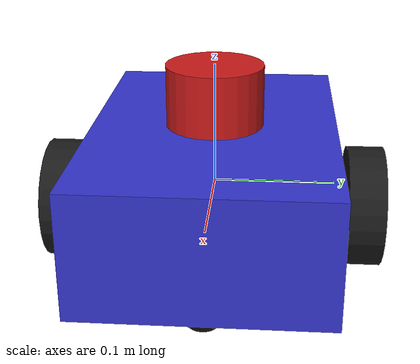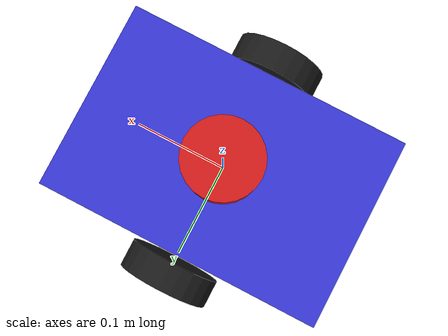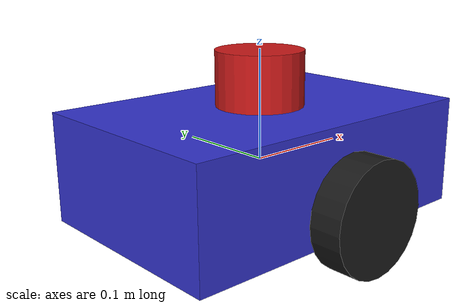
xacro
<?xml version="1.0"?>
<robot name="my_robot" xmlns:xacro="http://www.ros.org/wiki/xacro">

  <xacro:property name="chassis_length" value="0.3"/>
  <xacro:property name="chassis_width" value="0.2"/>
  <xacro:property name="chassis_height" value="0.1"/>
  <xacro:property name="chassis_mass" value="2.0"/>
  <xacro:property name="wheel_radius" value="0.05"/>
  <xacro:property name="wheel_width" value="0.03"/>
  <xacro:property name="wheel_mass" value="0.2"/>
  <xacro:property name="wheel_separation" value="0.25"/>
  <xacro:property name="wheel_offset_x" value="0.0"/>
  <xacro:property name="wheel_offset_z" value="-0.02"/>
  <xacro:property name="lidar_radius" value="0.04"/>
  <xacro:property name="lidar_height" value="0.05"/>

  <link name="base_link">
    <visual>
      <origin xyz="0 0 0" rpy="0 0 0"/>
      <geometry><box size="${chassis_length} ${chassis_width} ${chassis_height}"/></geometry>
      <material name="blue"><color rgba="0.2 0.2 0.8 1.0"/></material>
    </visual>
    <collision>
      <origin xyz="0 0 0" rpy="0 0 0"/>
      <geometry><box size="${chassis_length} ${chassis_width} ${chassis_height}"/></geometry>
    </collision>
    <inertial>
      <mass value="${chassis_mass}"/>
      <origin xyz="0 0 0" rpy="0 0 0"/>
      <inertia
        ixx="${(1/12) * chassis_mass * (chassis_width*chassis_width + chassis_height*chassis_height)}"
        iyy="${(1/12) * chassis_mass * (chassis_length*chassis_length + chassis_height*chassis_height)}"
        izz="${(1/12) * chassis_mass * (chassis_length*chassis_length + chassis_width*chassis_width)}"
        ixy="0" ixz="0" iyz="0"/>
    </inertial>
  </link>

  <xacro:macro name="wheel" params="prefix reflect">
    <link name="${prefix}_wheel_link">
      <visual>
        <origin xyz="0 0 0" rpy="1.5708 0 0"/>
        <geometry><cylinder radius="${wheel_radius}" length="${wheel_width}"/></geometry>
        <material name="black"><color rgba="0.1 0.1 0.1 1.0"/></material>
      </visual>
      <collision>
        <origin xyz="0 0 0" rpy="1.5708 0 0"/>
        <geometry><cylinder radius="${wheel_radius}" length="${wheel_width}"/></geometry>
      </collision>
      <inertial>
        <mass value="${wheel_mass}"/>
        <origin xyz="0 0 0" rpy="0 0 0"/>
        <inertia
          ixx="${(1/12) * wheel_mass * (3*wheel_radius*wheel_radius + wheel_width*wheel_width)}"
          iyy="${(1/12) * wheel_mass * (3*wheel_radius*wheel_radius + wheel_width*wheel_width)}"
          izz="${0.5 * wheel_mass * wheel_radius*wheel_radius}"
          ixy="0" ixz="0" iyz="0"/>
      </inertial>
    </link>
    <joint name="${prefix}_wheel_joint" type="continuous">
      <parent link="base_link"/>
      <child link="${prefix}_wheel_link"/>
      <origin xyz="${wheel_offset_x} ${reflect * wheel_separation/2} ${wheel_offset_z}" rpy="0 0 0"/>
      <axis xyz="0 1 0"/>
      <dynamics damping="0.2" friction="0.1"/>
    </joint>
  </xacro:macro>

  <xacro:wheel prefix="left" reflect="1"/>
  <xacro:wheel prefix="right" reflect="-1"/>

  <link name="caster_wheel_link">
    <visual><geometry><sphere radius="0.02"/></geometry><material name="black"/></visual>
    <collision><geometry><sphere radius="0.02"/></geometry></collision>
    <inertial>
      <mass value="0.05"/>
      <inertia ixx="0.00001" iyy="0.00001" izz="0.00001" ixy="0" ixz="0" iyz="0"/>
    </inertial>
  </link>
  <joint name="caster_wheel_joint" type="fixed">
    <parent link="base_link"/>
    <child link="caster_wheel_link"/>
    <origin xyz="${chassis_length/2 - 0.03} 0 ${wheel_offset_z - wheel_radius + 0.02}" rpy="0 0 0"/>
  </joint>

  <link name="lidar_link">
    <visual>
      <origin xyz="0 0 0" rpy="0 0 0"/>
      <geometry><cylinder radius="${lidar_radius}" length="${lidar_height}"/></geometry>
      <material name="red"><color rgba="0.8 0.1 0.1 1.0"/></material>
    </visual>
    <collision>
      <origin xyz="0 0 0" rpy="0 0 0"/>
      <geometry><cylinder radius="${lidar_radius}" length="${lidar_height}"/></geometry>
    </collision>
    <inertial>
      <mass value="0.1"/>
      <origin xyz="0 0 0" rpy="0 0 0"/>
      <inertia ixx="0.0001" iyy="0.0001" izz="0.0001" ixy="0" ixz="0" iyz="0"/>
    </inertial>
  </link>
  <joint name="lidar_joint" type="fixed">
    <parent link="base_link"/>
    <child link="lidar_link"/>
    <origin xyz="0 0 ${chassis_height/2 + lidar_height/2}" rpy="0 0 0"/>
  </joint>

  <gazebo reference="lidar_link">
    <sensor name="lidar_sensor" type="gpu_lidar">
      <pose>0 0 0 0 0 0</pose>
      <visualize>false</visualize>
      <update_rate>10</update_rate>
      <topic>scan</topic>
      <gz_frame_id>lidar_link</gz_frame_id>
      <lidar>
        <scan>
          <horizontal>
            <samples>360</samples>
            <resolution>1</resolution>
            <min_angle>-3.14159</min_angle>
            <max_angle>3.14159</max_angle>
          </horizontal>
        </scan>
        <range><min>0.12</min><max>10.0</max><resolution>0.01</resolution></range>
        <noise><type>gaussian</type><mean>0.0</mean><stddev>0.01</stddev></noise>
      </lidar>
    </sensor>
  </gazebo>

  <gazebo>
    <plugin filename="gz-sim-diff-drive-system" name="gz::sim::systems::DiffDrive">
      <left_joint>left_wheel_joint</left_joint>
      <right_joint>right_wheel_joint</right_joint>
      <wheel_separation>${wheel_separation}</wheel_separation>
      <wheel_radius>${wheel_radius}</wheel_radius>
      <max_linear_acceleration>1.0</max_linear_acceleration>
      <max_angular_acceleration>2.0</max_angular_acceleration>
      <max_wheel_acceleration>5.0</max_wheel_acceleration>
      <topic>cmd_vel</topic>
      <odom_topic>odom</odom_topic>
      <frame_id>odom</frame_id>
      <child_frame_id>base_link</child_frame_id>
      <odom_publish_frequency>30</odom_publish_frequency>
      <publish_odom>true</publish_odom>
      <publish_odom_tf>true</publish_odom_tf>
      <publish_wheel_tf>false</publish_wheel_tf>
    </plugin>
    <plugin filename="gz-sim-joint-state-publisher-system" name="gz::sim::systems::JointStatePublisher">
      <topic>joint_states</topic>
    </plugin>
  </gazebo>

</robot>
